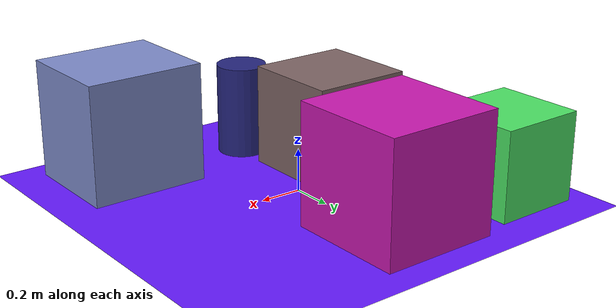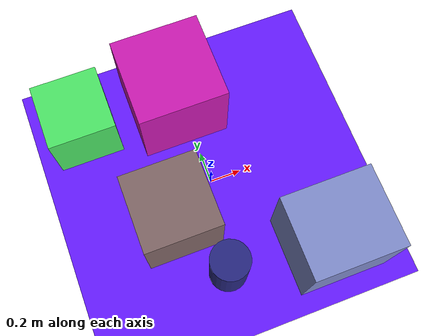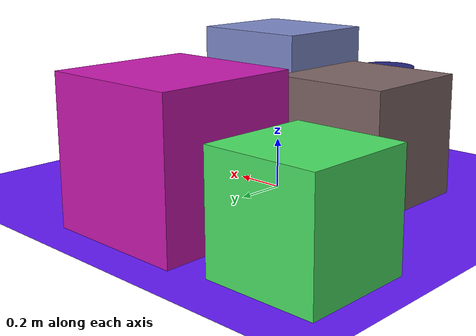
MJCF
<mujoco>
   <asset>
<texture type="skybox" builtin="gradient" rgb1="0.2 0.8 0.2" rgb2="0.3 0.2 0.0" width="256" height="256"/>
<texture name="flat_0" builtin="flat" rgb1="0.5 0.4 0.4" rgb2="0.5 0.4 0.4"  width="200" height="200"/>
<texture name="gradient_1" builtin="gradient" rgb1="0.2 0.2 0.3" rgb2="0.1 0.1 0.7" width="200" height="200"/>
<texture name="gradient_2" builtin="gradient" rgb1="0.8 0.2 0.7" rgb2="0.2 0.9 0.9" width="200" height="200"/>
<texture name="flat_3" builtin="flat" rgb1="0.3 0.9 0.4" rgb2="0.3 0.9 0.4"  width="200" height="200"/>
<texture name="flat_4" builtin="flat" rgb1="0.8 0.1 0.7" rgb2="0.8 0.1 0.7"  width="200" height="200"/><material name="flat_0_mat" reflectance="0" texture="flat_0" texuniform="true"/>
<material name="gradient_1_mat" reflectance="0" texture="gradient_1" texuniform="true"/>
<material name="gradient_2_mat" reflectance="0" texture="gradient_2" texuniform="true"/>
<material name="flat_3_mat" reflectance="0" texture="flat_3" texuniform="true"/>
<material name="flat_4_mat" reflectance="0" texture="flat_4" texuniform="true"/>
   </asset>

   <worldbody>
      <light diffuse=".9 .9 .9" pos="0 0 3" dir="0 0 -1"/>
     <geom type="plane" size="1 1 0.1" rgba="0.4 0.1 1.0 1"/>
<geom type="box" pos="-0.31 -0.16 0.24" size="0.24 0.24 0.24" material="flat_0_mat" />
<geom type="cylinder" pos="-0.11 -0.59 0.22" size="0.12 0.22 0.22" material="gradient_1_mat" />
<geom type="box" pos="0.54 -0.63 0.28" size="0.28 0.25 0.28" material="gradient_2_mat" />
<geom type="box" pos="-0.67 0.62 0.21" size="0.21 0.21 0.21" material="flat_3_mat" />
<geom type="box" pos="-0.05 0.59 0.28" size="0.28 0.28 0.28" material="flat_4_mat" /><camera euler="60 0 180" fovy="60" name="camera_a" pos="0 -1.5 1"></camera>   </worldbody>
</mujoco>
